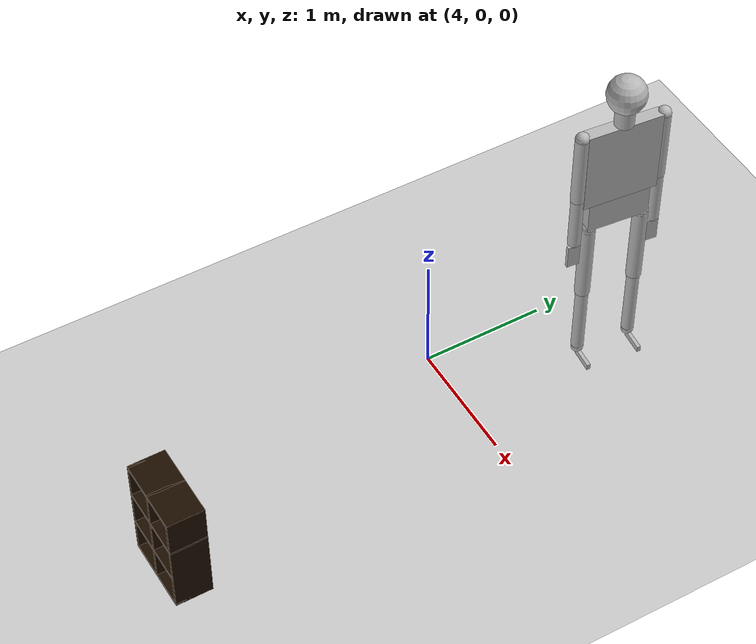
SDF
<sdf version="1.7">
 <world name="default">
  <model name="ground_plane">
   <static>1</static>
   <link name="link">
    <collision name="collision">
     <geometry><plane><normal>0 0 1</normal><size>100 100</size></plane></geometry>
     <surface>
      <contact><collide_bitmask>65535</collide_bitmask></contact>
      <friction><ode><mu>100</mu><mu2>50</mu2></ode></friction>
     </surface>
    </collision>
    <visual name="visual">
     <cast_shadows>0</cast_shadows>
     <geometry><plane><normal>0 0 1</normal><size>100 100</size></plane></geometry>
     <material>
      <script><uri>file://media/materials/scripts/gazebo.material</uri><name>Gazebo/Grey</name></script>
     </material>
    </visual>
   </link>
  </model>
  <model name="ragdoll">
   <pose>4.55712 1.25128 1.39978 -8e-05 0.012369 -0.09522</pose>
   <link name="hip">
    <inertial>
     <inertia><ixx>0.1</ixx><ixy>0</ixy><ixz>0</ixz><iyy>0.1</iyy><iyz>0</iyz><izz>0.1</izz></inertia>
     <mass>10</mass>
    </inertial>
    <collision name="hip_geom">
     <pose>0 0 0.125 0 -0 0</pose>
     <geometry><box><size>0.1 0.5 0.25</size></box></geometry>
     <surface>
      <friction><ode><mu>-1</mu><mu2>-1</mu2><fdir1>0 0 0</fdir1><slip1>0</slip1><slip2>0</slip2></ode></friction>
      <bounce><restitution_coefficient>0</restitution_coefficient><threshold>100000</threshold></bounce>
      <contact>
       <ode>
        <soft_cfm>0</soft_cfm>
        <soft_erp>0.2</soft_erp>
        <kp>1e+12</kp>
        <kd>1</kd>
        <max_vel>0</max_vel>
        <min_depth>0.001</min_depth>
       </ode>
      </contact>
     </surface>
    </collision>
    <visual name="hip_geom_visual">
     <pose>0 0 0.125 0 -0 0</pose>
     <geometry><box><size>0.1 0.5 0.25</size></box></geometry>
    </visual>
    <gravity>0</gravity>
   </link>
   <link name="l_thigh_pan">
    <pose>0 0.22 0 0 -0 0</pose>
    <inertial>
     <inertia><ixx>0.01</ixx><ixy>0</ixy><ixz>0</ixz><iyy>0.01</iyy><iyz>0</iyz><izz>0.01</izz></inertia>
     <mass>1</mass>
    </inertial>
    <collision name="l_thigh_pan_geom">
     <pose>0 0 -0.03 0 -0 0</pose>
     <geometry><sphere><radius>0.06</radius></sphere></geometry>
     <surface>
      <friction><ode><mu>-1</mu><mu2>-1</mu2><fdir1>0 0 0</fdir1><slip1>0</slip1><slip2>0</slip2></ode></friction>
      <bounce><restitution_coefficient>0</restitution_coefficient><threshold>100000</threshold></bounce>
      <contact>
       <ode>
        <soft_cfm>0</soft_cfm>
        <soft_erp>0.2</soft_erp>
        <kp>1e+12</kp>
        <kd>1</kd>
        <max_vel>0</max_vel>
        <min_depth>0.001</min_depth>
       </ode>
      </contact>
     </surface>
    </collision>
    <visual name="l_thigh_pan_geom_visual">
     <pose>0 0 -0.03 0 -0 0</pose>
     <geometry><sphere><radius>0.06</radius></sphere></geometry>
    </visual>
    <gravity>0</gravity>
   </link>
   <link name="l_thigh_lift">
    <pose>0 0.22 0 0 -0 0</pose>
    <inertial>
     <inertia><ixx>0.05</ixx><ixy>0</ixy><ixz>0</ixz><iyy>0.05</iyy><iyz>0</iyz><izz>0.05</izz></inertia>
     <mass>5</mass>
    </inertial>
    <collision name="l_thigh_lift_geom">
     <pose>0 0 -0.35 0 -0 0</pose>
     <geometry><cylinder><radius>0.06</radius><length>0.7</length></cylinder></geometry>
     <surface>
      <friction><ode><mu>-1</mu><mu2>-1</mu2><fdir1>0 0 0</fdir1><slip1>0</slip1><slip2>0</slip2></ode></friction>
      <bounce><restitution_coefficient>0</restitution_coefficient><threshold>100000</threshold></bounce>
      <contact>
       <ode>
        <soft_cfm>0</soft_cfm>
        <soft_erp>0.2</soft_erp>
        <kp>1e+12</kp>
        <kd>1</kd>
        <max_vel>0</max_vel>
        <min_depth>0.001</min_depth>
       </ode>
      </contact>
     </surface>
    </collision>
    <visual name="l_thigh_lift_geom_visual">
     <pose>0 0 -0.35 0 -0 0</pose>
     <geometry><cylinder><radius>0.06</radius><length>0.7</length></cylinder></geometry>
    </visual>
    <gravity>0</gravity>
   </link>
   <link name="l_calf">
    <pose>0 0.22 -0.7 0 -0 0</pose>
    <inertial>
     <inertia><ixx>0.02</ixx><ixy>0</ixy><ixz>0</ixz><iyy>0.02</iyy><iyz>0</iyz><izz>0.02</izz></inertia>
     <mass>2</mass>
    </inertial>
    <collision name="l_calf_geom">
     <pose>0 0 -0.3 0 -0 0</pose>
     <geometry><cylinder><radius>0.05</radius><length>0.6</length></cylinder></geometry>
     <surface>
      <friction><ode><mu>-1</mu><mu2>-1</mu2><fdir1>0 0 0</fdir1><slip1>0</slip1><slip2>0</slip2></ode></friction>
      <bounce><restitution_coefficient>0</restitution_coefficient><threshold>100000</threshold></bounce>
      <contact>
       <ode>
        <soft_cfm>0</soft_cfm>
        <soft_erp>0.2</soft_erp>
        <kp>1e+12</kp>
        <kd>1</kd>
        <max_vel>0</max_vel>
        <min_depth>0.001</min_depth>
       </ode>
      </contact>
     </surface>
    </collision>
    <visual name="l_calf_geom_visual">
     <pose>0 0 -0.3 0 -0 0</pose>
     <geometry><cylinder><radius>0.05</radius><length>0.6</length></cylinder></geometry>
    </visual>
    <gravity>0</gravity>
   </link>
   <link name="l_ankle">
    <pose>0 0.22 -1.325 0 -0 0</pose>
    <inertial>
     <inertia><ixx>0.01</ixx><ixy>0</ixy><ixz>0</ixz><iyy>0.01</iyy><iyz>0</iyz><izz>0.01</izz></inertia>
     <mass>1</mass>
    </inertial>
    <collision name="l_ankle_geom">
     <geometry><sphere><radius>0.05</radius></sphere></geometry>
     <surface>
      <friction><ode><mu>-1</mu><mu2>-1</mu2><fdir1>0 0 0</fdir1><slip1>0</slip1><slip2>0</slip2></ode></friction>
      <bounce><restitution_coefficient>0</restitution_coefficient><threshold>100000</threshold></bounce>
      <contact>
       <ode>
        <soft_cfm>0</soft_cfm>
        <soft_erp>0.2</soft_erp>
        <kp>1e+12</kp>
        <kd>1</kd>
        <max_vel>0</max_vel>
        <min_depth>0.001</min_depth>
       </ode>
      </contact>
     </surface>
    </collision>
    <visual name="l_ankle_geom_visual"><geometry><sphere><radius>0.05</radius></sphere></geometry></visual>
    <gravity>0</gravity>
   </link>
   <link name="l_foot">
    <pose>0 0.22 -1.35 0 -0 0</pose>
    <inertial>
     <pose>0.1 0 0 0 -0 0</pose>
     <inertia><ixx>0.01</ixx><ixy>0</ixy><ixz>0</ixz><iyy>0.01</iyy><iyz>0</iyz><izz>0.01</izz></inertia>
     <mass>1</mass>
    </inertial>
    <collision name="l_foot_geom">
     <pose>0.1 0 -0.025 0 -0 0</pose>
     <geometry><box><size>0.2 0.03 0.05</size></box></geometry>
     <surface>
      <friction><ode><mu>-1</mu><mu2>-1</mu2><fdir1>0 0 0</fdir1><slip1>0</slip1><slip2>0</slip2></ode></friction>
      <bounce><restitution_coefficient>0</restitution_coefficient><threshold>100000</threshold></bounce>
      <contact>
       <ode>
        <soft_cfm>0</soft_cfm>
        <soft_erp>0.2</soft_erp>
        <kp>1e+12</kp>
        <kd>1</kd>
        <max_vel>0</max_vel>
        <min_depth>0.001</min_depth>
       </ode>
      </contact>
     </surface>
    </collision>
    <visual name="l_foot_geom_visual">
     <pose>0.1 0 -0.025 0 -0 0</pose>
     <geometry><box><size>0.2 0.03 0.05</size></box></geometry>
    </visual>
   </link>
   <link name="r_thigh_pan">
    <pose>0 -0.22 0 0 -0 0</pose>
    <inertial>
     <inertia><ixx>0.01</ixx><ixy>0</ixy><ixz>0</ixz><iyy>0.01</iyy><iyz>0</iyz><izz>0.01</izz></inertia>
     <mass>1</mass>
    </inertial>
    <collision name="r_thigh_pan_geom">
     <pose>0 0 -0.03 0 -0 0</pose>
     <geometry><sphere><radius>0.06</radius></sphere></geometry>
     <surface>
      <friction><ode><mu>-1</mu><mu2>-1</mu2><fdir1>0 0 0</fdir1><slip1>0</slip1><slip2>0</slip2></ode></friction>
      <bounce><restitution_coefficient>0</restitution_coefficient><threshold>100000</threshold></bounce>
      <contact>
       <ode>
        <soft_cfm>0</soft_cfm>
        <soft_erp>0.2</soft_erp>
        <kp>1e+12</kp>
        <kd>1</kd>
        <max_vel>0</max_vel>
        <min_depth>0.001</min_depth>
       </ode>
      </contact>
     </surface>
    </collision>
    <visual name="r_thigh_pan_geom_visual">
     <pose>0 0 -0.03 0 -0 0</pose>
     <geometry><sphere><radius>0.06</radius></sphere></geometry>
    </visual>
    <gravity>0</gravity>
   </link>
   <link name="r_thigh_lift">
    <pose>0 -0.22 0 0 -0 0</pose>
    <inertial>
     <inertia><ixx>0.05</ixx><ixy>0</ixy><ixz>0</ixz><iyy>0.05</iyy><iyz>0</iyz><izz>0.05</izz></inertia>
     <mass>5</mass>
    </inertial>
    <collision name="r_thigh_lift_geom">
     <pose>0 0 -0.35 0 -0 0</pose>
     <geometry><cylinder><radius>0.06</radius><length>0.7</length></cylinder></geometry>
     <surface>
      <friction><ode><mu>-1</mu><mu2>-1</mu2><fdir1>0 0 0</fdir1><slip1>0</slip1><slip2>0</slip2></ode></friction>
      <bounce><restitution_coefficient>0</restitution_coefficient><threshold>100000</threshold></bounce>
      <contact>
       <ode>
        <soft_cfm>0</soft_cfm>
        <soft_erp>0.2</soft_erp>
        <kp>1e+12</kp>
        <kd>1</kd>
        <max_vel>0</max_vel>
        <min_depth>0.001</min_depth>
       </ode>
      </contact>
     </surface>
    </collision>
    <visual name="r_thigh_lift_geom_visual">
     <pose>0 0 -0.35 0 -0 0</pose>
     <geometry><cylinder><radius>0.06</radius><length>0.7</length></cylinder></geometry>
    </visual>
    <gravity>0</gravity>
   </link>
   <link name="r_calf">
    <pose>0 -0.22 -0.7 0 -0 0</pose>
    <inertial>
     <inertia><ixx>0.02</ixx><ixy>0</ixy><ixz>0</ixz><iyy>0.02</iyy><iyz>0</iyz><izz>0.02</izz></inertia>
     <mass>2</mass>
    </inertial>
    <collision name="r_calf_geom">
     <pose>0 0 -0.3 0 -0 0</pose>
     <geometry><cylinder><radius>0.05</radius><length>0.6</length></cylinder></geometry>
     <surface>
      <friction><ode><mu>-1</mu><mu2>-1</mu2><fdir1>0 0 0</fdir1><slip1>0</slip1><slip2>0</slip2></ode></friction>
      <bounce><restitution_coefficient>0</restitution_coefficient><threshold>100000</threshold></bounce>
      <contact>
       <ode>
        <soft_cfm>0</soft_cfm>
        <soft_erp>0.2</soft_erp>
        <kp>1e+12</kp>
        <kd>1</kd>
        <max_vel>0</max_vel>
        <min_depth>0.001</min_depth>
       </ode>
      </contact>
     </surface>
    </collision>
    <visual name="r_calf_geom_visual">
     <pose>0 0 -0.3 0 -0 0</pose>
     <geometry><cylinder><radius>0.05</radius><length>0.6</length></cylinder></geometry>
    </visual>
    <gravity>0</gravity>
   </link>
   <link name="r_ankle">
    <pose>0 -0.22 -1.325 0 -0 0</pose>
    <inertial>
     <inertia><ixx>0.01</ixx><ixy>0</ixy><ixz>0</ixz><iyy>0.01</iyy><iyz>0</iyz><izz>0.01</izz></inertia>
     <mass>1</mass>
    </inertial>
    <collision name="r_ankle_geom">
     <geometry><sphere><radius>0.05</radius></sphere></geometry>
     <surface>
      <friction><ode><mu>-1</mu><mu2>-1</mu2><fdir1>0 0 0</fdir1><slip1>0</slip1><slip2>0</slip2></ode></friction>
      <bounce><restitution_coefficient>0</restitution_coefficient><threshold>100000</threshold></bounce>
      <contact>
       <ode>
        <soft_cfm>0</soft_cfm>
        <soft_erp>0.2</soft_erp>
        <kp>1e+12</kp>
        <kd>1</kd>
        <max_vel>0</max_vel>
        <min_depth>0.001</min_depth>
       </ode>
      </contact>
     </surface>
    </collision>
    <visual name="r_ankle_geom_visual"><geometry><sphere><radius>0.05</radius></sphere></geometry></visual>
    <gravity>0</gravity>
   </link>
   <link name="r_foot">
    <pose>0 -0.22 -1.35 0 -0 0</pose>
    <inertial>
     <pose>0.1 0 0 0 -0 0</pose>
     <inertia><ixx>0.01</ixx><ixy>0</ixy><ixz>0</ixz><iyy>0.01</iyy><iyz>0</iyz><izz>0.01</izz></inertia>
     <mass>1</mass>
    </inertial>
    <collision name="r_foot_geom">
     <pose>0.1 0 -0.025 0 -0 0</pose>
     <geometry><box><size>0.2 0.03 0.05</size></box></geometry>
     <surface>
      <friction><ode><mu>-1</mu><mu2>-1</mu2><fdir1>0 0 0</fdir1><slip1>0</slip1><slip2>0</slip2></ode></friction>
      <bounce><restitution_coefficient>0</restitution_coefficient><threshold>100000</threshold></bounce>
      <contact>
       <ode>
        <soft_cfm>0</soft_cfm>
        <soft_erp>0.2</soft_erp>
        <kp>1e+12</kp>
        <kd>1</kd>
        <max_vel>0</max_vel>
        <min_depth>0.001</min_depth>
       </ode>
      </contact>
     </surface>
    </collision>
    <visual name="r_foot_geom_visual">
     <pose>0.1 0 -0.025 0 -0 0</pose>
     <geometry><box><size>0.2 0.03 0.05</size></box></geometry>
    </visual>
   </link>
   <link name="torso">
    <pose>0 0 0.25 0 -0 0</pose>
    <inertial>
     <inertia><ixx>0.3</ixx><ixy>0</ixy><ixz>0</ixz><iyy>0.3</iyy><iyz>0</iyz><izz>0.3</izz></inertia>
     <mass>30</mass>
    </inertial>
    <collision name="torso_geom">
     <pose>0 0 0.35 0 -0 0</pose>
     <geometry><box><size>0.1 0.6 0.7</size></box></geometry>
     <surface>
      <friction><ode><mu>-1</mu><mu2>-1</mu2><fdir1>0 0 0</fdir1><slip1>0</slip1><slip2>0</slip2></ode></friction>
      <bounce><restitution_coefficient>0</restitution_coefficient><threshold>100000</threshold></bounce>
      <contact>
       <ode>
        <soft_cfm>0</soft_cfm>
        <soft_erp>0.2</soft_erp>
        <kp>1e+12</kp>
        <kd>1</kd>
        <max_vel>0</max_vel>
        <min_depth>0.001</min_depth>
       </ode>
      </contact>
     </surface>
    </collision>
    <visual name="torso_geom_visual">
     <pose>0 0 0.35 0 -0 0</pose>
     <geometry><box><size>0.1 0.6 0.7</size></box></geometry>
    </visual>
    <gravity>0</gravity>
   </link>
   <link name="l_shoulder">
    <pose>0 0.3275 0.9225 0 -0 0</pose>
    <inertial>
     <inertia><ixx>0.01</ixx><ixy>0</ixy><ixz>0</ixz><iyy>0.01</iyy><iyz>0</iyz><izz>0.01</izz></inertia>
     <mass>1</mass>
    </inertial>
    <collision name="l_shoulder_geom">
     <geometry><sphere><radius>0.055</radius></sphere></geometry>
     <surface>
      <friction><ode><mu>-1</mu><mu2>-1</mu2><fdir1>0 0 0</fdir1><slip1>0</slip1><slip2>0</slip2></ode></friction>
      <bounce><restitution_coefficient>0</restitution_coefficient><threshold>100000</threshold></bounce>
      <contact>
       <ode>
        <soft_cfm>0</soft_cfm>
        <soft_erp>0.2</soft_erp>
        <kp>1e+12</kp>
        <kd>1</kd>
        <max_vel>0</max_vel>
        <min_depth>0.001</min_depth>
       </ode>
      </contact>
     </surface>
    </collision>
    <visual name="l_shoulder_geom_visual"><geometry><sphere><radius>0.055</radius></sphere></geometry></visual>
    <gravity>0</gravity>
   </link>
   <link name="l_upper_arm">
    <pose>0 0.3275 0.9225 0 -0 0</pose>
    <inertial>
     <inertia><ixx>0.02</ixx><ixy>0</ixy><ixz>0</ixz><iyy>0.02</iyy><iyz>0</iyz><izz>0.02</izz></inertia>
     <mass>2</mass>
    </inertial>
    <collision name="l_upper_arm_geom">
     <pose>0 0 -0.3 0 -0 0</pose>
     <geometry><cylinder><radius>0.055</radius><length>0.6</length></cylinder></geometry>
     <surface>
      <friction><ode><mu>-1</mu><mu2>-1</mu2><fdir1>0 0 0</fdir1><slip1>0</slip1><slip2>0</slip2></ode></friction>
      <bounce><restitution_coefficient>0</restitution_coefficient><threshold>100000</threshold></bounce>
      <contact>
       <ode>
        <soft_cfm>0</soft_cfm>
        <soft_erp>0.2</soft_erp>
        <kp>1e+12</kp>
        <kd>1</kd>
        <max_vel>0</max_vel>
        <min_depth>0.001</min_depth>
       </ode>
      </contact>
     </surface>
    </collision>
    <visual name="l_upper_arm_geom_visual">
     <pose>0 0 -0.3 0 -0 0</pose>
     <geometry><cylinder><radius>0.055</radius><length>0.6</length></cylinder></geometry>
    </visual>
    <gravity>0</gravity>
   </link>
   <link name="l_forearm">
    <pose>0 0.3275 0.3225 0 -0 0</pose>
    <inertial>
     <inertia><ixx>0.01</ixx><ixy>0</ixy><ixz>0</ixz><iyy>0.01</iyy><iyz>0</iyz><izz>0.01</izz></inertia>
     <mass>1</mass>
    </inertial>
    <collision name="l_forearm_geom">
     <pose>0 0 -0.225 0 -0 0</pose>
     <geometry><cylinder><radius>0.05</radius><length>0.45</length></cylinder></geometry>
     <surface>
      <friction><ode><mu>-1</mu><mu2>-1</mu2><fdir1>0 0 0</fdir1><slip1>0</slip1><slip2>0</slip2></ode></friction>
      <bounce><restitution_coefficient>0</restitution_coefficient><threshold>100000</threshold></bounce>
      <contact>
       <ode>
        <soft_cfm>0</soft_cfm>
        <soft_erp>0.2</soft_erp>
        <kp>1e+12</kp>
        <kd>1</kd>
        <max_vel>0</max_vel>
        <min_depth>0.001</min_depth>
       </ode>
      </contact>
     </surface>
    </collision>
    <visual name="l_forearm_geom_visual">
     <pose>0 0 -0.225 0 -0 0</pose>
     <geometry><cylinder><radius>0.05</radius><length>0.45</length></cylinder></geometry>
    </visual>
    <gravity>0</gravity>
   </link>
   <link name="l_wrist">
    <pose>0 0.3275 -0.1425 0 -0 0</pose>
    <inertial>
     <inertia><ixx>0.01</ixx><ixy>0</ixy><ixz>0</ixz><iyy>0.01</iyy><iyz>0</iyz><izz>0.01</izz></inertia>
     <mass>1</mass>
    </inertial>
    <collision name="l_wrist_geom">
     <geometry><sphere><radius>0.03</radius></sphere></geometry>
     <surface>
      <friction><ode><mu>-1</mu><mu2>-1</mu2><fdir1>0 0 0</fdir1><slip1>0</slip1><slip2>0</slip2></ode></friction>
      <bounce><restitution_coefficient>0</restitution_coefficient><threshold>100000</threshold></bounce>
      <contact>
       <ode>
        <soft_cfm>0</soft_cfm>
        <soft_erp>0.2</soft_erp>
        <kp>1e+12</kp>
        <kd>1</kd>
        <max_vel>0</max_vel>
        <min_depth>0.001</min_depth>
       </ode>
      </contact>
     </surface>
    </collision>
    <visual name="l_wrist_geom_visual"><geometry><sphere><radius>0.03</radius></sphere></geometry></visual>
    <gravity>0</gravity>
   </link>
   <link name="l_hand">
    <pose>0 0.3275 -0.1575 0 -0 0</pose>
    <inertial>
     <inertia><ixx>0.01</ixx><ixy>0</ixy><ixz>0</ixz><iyy>0.01</iyy><iyz>0</iyz><izz>0.01</izz></inertia>
     <mass>1</mass>
    </inertial>
    <collision name="l_hand_geom">
     <pose>0 0 -0.1 0 -0 0</pose>
     <geometry><box><size>0.03 0.1 0.2</size></box></geometry>
     <surface>
      <friction><ode><mu>-1</mu><mu2>-1</mu2><fdir1>0 0 0</fdir1><slip1>0</slip1><slip2>0</slip2></ode></friction>
      <bounce><restitution_coefficient>0</restitution_coefficient><threshold>100000</threshold></bounce>
      <contact>
       <ode>
        <soft_cfm>0</soft_cfm>
        <soft_erp>0.2</soft_erp>
        <kp>1e+12</kp>
        <kd>1</kd>
        <max_vel>0</max_vel>
        <min_depth>0.001</min_depth>
       </ode>
      </contact>
     </surface>
    </collision>
    <visual name="l_hand_geom_visual">
     <pose>0 0 -0.1 0 -0 0</pose>
     <geometry><box><size>0.03 0.1 0.2</size></box></geometry>
    </visual>
    <gravity>0</gravity>
   </link>
   <link name="neck">
    <pose>0 0 0.95 0 -0 0</pose>
    <inertial>
     <inertia><ixx>0.01</ixx><ixy>0</ixy><ixz>0</ixz><iyy>0.01</iyy><iyz>0</iyz><izz>0.01</izz></inertia>
     <mass>1</mass>
    </inertial>
    <collision name="neck_geom">
     <pose>0 0 0.1 0 -0 0</pose>
     <geometry><cylinder><radius>0.075</radius><length>0.2</length></cylinder></geometry>
     <surface>
      <friction><ode><mu>-1</mu><mu2>-1</mu2><fdir1>0 0 0</fdir1><slip1>0</slip1><slip2>0</slip2></ode></friction>
      <bounce><restitution_coefficient>0</restitution_coefficient><threshold>100000</threshold></bounce>
      <contact>
       <ode>
        <soft_cfm>0</soft_cfm>
        <soft_erp>0.2</soft_erp>
        <kp>1e+12</kp>
        <kd>1</kd>
        <max_vel>0</max_vel>
        <min_depth>0.001</min_depth>
       </ode>
      </contact>
     </surface>
    </collision>
    <visual name="neck_geom_visual">
     <pose>0 0 0.1 0 -0 0</pose>
     <geometry><cylinder><radius>0.075</radius><length>0.2</length></cylinder></geometry>
    </visual>
    <gravity>0</gravity>
   </link>
   <link name="head">
    <pose>0 0 1.225 0 -0 0</pose>
    <inertial>
     <inertia><ixx>0.1</ixx><ixy>0</ixy><ixz>0</ixz><iyy>0.1</iyy><iyz>0</iyz><izz>0.1</izz></inertia>
     <mass>10</mass>
    </inertial>
    <collision name="head_geom">
     <geometry><sphere><radius>0.15</radius></sphere></geometry>
     <surface>
      <friction><ode><mu>-1</mu><mu2>-1</mu2><fdir1>0 0 0</fdir1><slip1>0</slip1><slip2>0</slip2></ode></friction>
      <bounce><restitution_coefficient>0</restitution_coefficient><threshold>100000</threshold></bounce>
      <contact>
       <ode>
        <soft_cfm>0</soft_cfm>
        <soft_erp>0.2</soft_erp>
        <kp>1e+12</kp>
        <kd>1</kd>
        <max_vel>0</max_vel>
        <min_depth>0.001</min_depth>
       </ode>
      </contact>
     </surface>
    </collision>
    <visual name="head_geom_visual"><geometry><sphere><radius>0.15</radius></sphere></geometry></visual>
    <gravity>0</gravity>
   </link>
   <link name="r_shoulder">
    <pose>0 -0.3275 0.9225 0 -0 0</pose>
    <inertial>
     <inertia><ixx>0.01</ixx><ixy>0</ixy><ixz>0</ixz><iyy>0.01</iyy><iyz>0</iyz><izz>0.01</izz></inertia>
     <mass>1</mass>
    </inertial>
    <collision name="r_shoulder_geom">
     <geometry><sphere><radius>0.055</radius></sphere></geometry>
     <surface>
      <friction><ode><mu>-1</mu><mu2>-1</mu2><fdir1>0 0 0</fdir1><slip1>0</slip1><slip2>0</slip2></ode></friction>
      <bounce><restitution_coefficient>0</restitution_coefficient><threshold>100000</threshold></bounce>
      <contact>
       <ode>
        <soft_cfm>0</soft_cfm>
        <soft_erp>0.2</soft_erp>
        <kp>1e+12</kp>
        <kd>1</kd>
        <max_vel>0</max_vel>
        <min_depth>0.001</min_depth>
       </ode>
      </contact>
     </surface>
    </collision>
    <visual name="r_shoulder_geom_visual"><geometry><sphere><radius>0.055</radius></sphere></geometry></visual>
    <gravity>0</gravity>
   </link>
   <link name="r_upper_arm">
    <pose>0 -0.3275 0.9225 0 -0 0</pose>
    <inertial>
     <inertia><ixx>0.02</ixx><ixy>0</ixy><ixz>0</ixz><iyy>0.02</iyy><iyz>0</iyz><izz>0.02</izz></inertia>
     <mass>2</mass>
    </inertial>
    <collision name="r_upper_arm_geom">
     <pose>0 0 -0.3 0 -0 0</pose>
     <geometry><cylinder><radius>0.055</radius><length>0.6</length></cylinder></geometry>
     <surface>
      <friction><ode><mu>-1</mu><mu2>-1</mu2><fdir1>0 0 0</fdir1><slip1>0</slip1><slip2>0</slip2></ode></friction>
      <bounce><restitution_coefficient>0</restitution_coefficient><threshold>100000</threshold></bounce>
      <contact>
       <ode>
        <soft_cfm>0</soft_cfm>
        <soft_erp>0.2</soft_erp>
        <kp>1e+12</kp>
        <kd>1</kd>
        <max_vel>0</max_vel>
        <min_depth>0.001</min_depth>
       </ode>
      </contact>
     </surface>
    </collision>
    <visual name="r_upper_arm_geom_visual">
     <pose>0 0 -0.3 0 -0 0</pose>
     <geometry><cylinder><radius>0.055</radius><length>0.6</length></cylinder></geometry>
    </visual>
    <gravity>0</gravity>
   </link>
   <link name="r_forearm">
    <pose>0 -0.3275 0.3225 0 -0 0</pose>
    <inertial>
     <inertia><ixx>0.01</ixx><ixy>0</ixy><ixz>0</ixz><iyy>0.01</iyy><iyz>0</iyz><izz>0.01</izz></inertia>
     <mass>1</mass>
    </inertial>
    <collision name="r_forearm_geom">
     <pose>0 0 -0.225 0 -0 0</pose>
     <geometry><cylinder><radius>0.05</radius><length>0.45</length></cylinder></geometry>
     <surface>
      <friction><ode><mu>-1</mu><mu2>-1</mu2><fdir1>0 0 0</fdir1><slip1>0</slip1><slip2>0</slip2></ode></friction>
      <bounce><restitution_coefficient>0</restitution_coefficient><threshold>100000</threshold></bounce>
      <contact>
       <ode>
        <soft_cfm>0</soft_cfm>
        <soft_erp>0.2</soft_erp>
        <kp>1e+12</kp>
        <kd>1</kd>
        <max_vel>0</max_vel>
        <min_depth>0.001</min_depth>
       </ode>
      </contact>
     </surface>
    </collision>
    <visual name="r_forearm_geom_visual">
     <pose>0 0 -0.225 0 -0 0</pose>
     <geometry><cylinder><radius>0.05</radius><length>0.45</length></cylinder></geometry>
    </visual>
    <gravity>0</gravity>
   </link>
   <link name="r_wrist">
    <pose>0 -0.3275 -0.1425 0 -0 0</pose>
    <inertial>
     <inertia><ixx>0.01</ixx><ixy>0</ixy><ixz>0</ixz><iyy>0.01</iyy><iyz>0</iyz><izz>0.01</izz></inertia>
     <mass>1</mass>
    </inertial>
    <collision name="r_wrist_geom">
     <geometry><sphere><radius>0.03</radius></sphere></geometry>
     <surface>
      <friction><ode><mu>-1</mu><mu2>-1</mu2><fdir1>0 0 0</fdir1><slip1>0</slip1><slip2>0</slip2></ode></friction>
      <bounce><restitution_coefficient>0</restitution_coefficient><threshold>100000</threshold></bounce>
      <contact>
       <ode>
        <soft_cfm>0</soft_cfm>
        <soft_erp>0.2</soft_erp>
        <kp>1e+12</kp>
        <kd>1</kd>
        <max_vel>0</max_vel>
        <min_depth>0.001</min_depth>
       </ode>
      </contact>
     </surface>
    </collision>
    <visual name="r_wrist_geom_visual"><geometry><sphere><radius>0.03</radius></sphere></geometry></visual>
    <gravity>0</gravity>
   </link>
   <link name="r_hand">
    <pose>0 -0.3275 -0.1575 0 -0 0</pose>
    <inertial>
     <inertia><ixx>0.01</ixx><ixy>0</ixy><ixz>0</ixz><iyy>0.01</iyy><iyz>0</iyz><izz>0.01</izz></inertia>
     <mass>1</mass>
    </inertial>
    <collision name="r_hand_geom">
     <pose>0 0 -0.1 0 -0 0</pose>
     <geometry><box><size>0.03 0.1 0.2</size></box></geometry>
     <surface>
      <friction><ode><mu>-1</mu><mu2>-1</mu2><fdir1>0 0 0</fdir1><slip1>0</slip1><slip2>0</slip2></ode></friction>
      <bounce><restitution_coefficient>0</restitution_coefficient><threshold>100000</threshold></bounce>
      <contact>
       <ode>
        <soft_cfm>0</soft_cfm>
        <soft_erp>0.2</soft_erp>
        <kp>1e+12</kp>
        <kd>1</kd>
        <max_vel>0</max_vel>
        <min_depth>0.001</min_depth>
       </ode>
      </contact>
     </surface>
    </collision>
    <visual name="r_hand_geom_visual">
     <pose>0 0 -0.1 0 -0 0</pose>
     <geometry><box><size>0.03 0.1 0.2</size></box></geometry>
    </visual>
    <gravity>0</gravity>
   </link>
   <joint name="l_thigh_pan_joint" type="revolute">
    <parent>hip</parent>
    <child>l_thigh_pan</child>
    <axis>
     <dynamics>
      <damping>0</damping>
      <friction>0</friction>
      <spring_reference>0</spring_reference>
      <spring_stiffness>0</spring_stiffness>
     </dynamics>
     <limit><lower>-1.5708</lower><upper>1.5708</upper><effort>0</effort><velocity>0</velocity></limit>
     <xyz expressed_in="__model__">0 0 1</xyz>
    </axis>
   </joint>
   <joint name="l_thigh_lift_joint" type="revolute">
    <parent>l_thigh_pan</parent>
    <child>l_thigh_lift</child>
    <axis>
     <dynamics>
      <damping>0</damping>
      <friction>0</friction>
      <spring_reference>0</spring_reference>
      <spring_stiffness>0</spring_stiffness>
     </dynamics>
     <limit><lower>-1.5708</lower><upper>1.5708</upper><effort>0</effort><velocity>0</velocity></limit>
     <xyz expressed_in="__model__">0 1 0</xyz>
    </axis>
   </joint>
   <joint name="l_calf_joint" type="revolute">
    <parent>l_thigh_lift</parent>
    <child>l_calf</child>
    <axis>
     <dynamics>
      <damping>0</damping>
      <friction>0</friction>
      <spring_reference>0</spring_reference>
      <spring_stiffness>0</spring_stiffness>
     </dynamics>
     <limit><lower>-1.5708</lower><upper>1.5708</upper><effort>0</effort><velocity>0</velocity></limit>
     <xyz expressed_in="__model__">0 1 0</xyz>
    </axis>
   </joint>
   <joint name="l_ankle_joint" type="revolute">
    <parent>l_calf</parent>
    <child>l_ankle</child>
    <axis>
     <dynamics>
      <damping>0</damping>
      <friction>0</friction>
      <spring_reference>0</spring_reference>
      <spring_stiffness>0</spring_stiffness>
     </dynamics>
     <limit><lower>-1.5708</lower><upper>1.5708</upper><effort>0</effort><velocity>0</velocity></limit>
     <xyz expressed_in="__model__">0 1 0</xyz>
    </axis>
   </joint>
   <joint name="l_foot_joint" type="revolute">
    <parent>l_ankle</parent>
    <child>l_foot</child>
    <axis>
     <dynamics>
      <damping>0</damping>
      <friction>0</friction>
      <spring_reference>0</spring_reference>
      <spring_stiffness>0</spring_stiffness>
     </dynamics>
     <limit><lower>-1.5708</lower><upper>1.5708</upper><effort>0</effort><velocity>0</velocity></limit>
     <xyz expressed_in="__model__">1 0 0</xyz>
    </axis>
   </joint>
   <joint name="r_thigh_pan_joint" type="revolute">
    <parent>hip</parent>
    <child>r_thigh_pan</child>
    <axis>
     <dynamics>
      <damping>0</damping>
      <friction>0</friction>
      <spring_reference>0</spring_reference>
      <spring_stiffness>0</spring_stiffness>
     </dynamics>
     <limit><lower>-1.5708</lower><upper>1.5708</upper><effort>0</effort><velocity>0</velocity></limit>
     <xyz expressed_in="__model__">0 0 1</xyz>
    </axis>
   </joint>
   <joint name="r_thigh_lift_joint" type="revolute">
    <parent>r_thigh_pan</parent>
    <child>r_thigh_lift</child>
    <axis>
     <dynamics>
      <damping>0</damping>
      <friction>0</friction>
      <spring_reference>0</spring_reference>
      <spring_stiffness>0</spring_stiffness>
     </dynamics>
     <limit><lower>-1.5708</lower><upper>1.5708</upper><effort>0</effort><velocity>0</velocity></limit>
     <xyz expressed_in="__model__">0 1 0</xyz>
    </axis>
   </joint>
   <joint name="r_calf_joint" type="revolute">
    <parent>r_thigh_lift</parent>
    <child>r_calf</child>
    <axis>
     <dynamics>
      <damping>0</damping>
      <friction>0</friction>
      <spring_reference>0</spring_reference>
      <spring_stiffness>0</spring_stiffness>
     </dynamics>
     <limit><lower>-1.5708</lower><upper>1.5708</upper><effort>0</effort><velocity>0</velocity></limit>
     <xyz expressed_in="__model__">0 1 0</xyz>
    </axis>
   </joint>
   <joint name="r_ankle_joint" type="revolute">
    <parent>r_calf</parent>
    <child>r_ankle</child>
    <axis>
     <dynamics>
      <damping>0</damping>
      <friction>0</friction>
      <spring_reference>0</spring_reference>
      <spring_stiffness>0</spring_stiffness>
     </dynamics>
     <limit><lower>-1.5708</lower><upper>1.5708</upper><effort>0</effort><velocity>0</velocity></limit>
     <xyz expressed_in="__model__">0 1 0</xyz>
    </axis>
   </joint>
   <joint name="r_foot_joint" type="revolute">
    <parent>r_ankle</parent>
    <child>r_foot</child>
    <axis>
     <dynamics>
      <damping>0</damping>
      <friction>0</friction>
      <spring_reference>0</spring_reference>
      <spring_stiffness>0</spring_stiffness>
     </dynamics>
     <limit><lower>-1.5708</lower><upper>1.5708</upper><effort>0</effort><velocity>0</velocity></limit>
     <xyz expressed_in="__model__">1 0 0</xyz>
    </axis>
   </joint>
   <joint name="torso_joint" type="revolute">
    <parent>hip</parent>
    <child>torso</child>
    <axis>
     <dynamics>
      <damping>0</damping>
      <friction>0</friction>
      <spring_reference>0</spring_reference>
      <spring_stiffness>0</spring_stiffness>
     </dynamics>
     <limit><lower>-1.5708</lower><upper>1.5708</upper><effort>0</effort><velocity>0</velocity></limit>
     <xyz expressed_in="__model__">0 1 0</xyz>
    </axis>
   </joint>
   <joint name="l_shoulder_joint" type="revolute">
    <parent>torso</parent>
    <child>l_shoulder</child>
    <axis>
     <dynamics>
      <damping>0</damping>
      <friction>0</friction>
      <spring_reference>0</spring_reference>
      <spring_stiffness>0</spring_stiffness>
     </dynamics>
     <limit><lower>-1.5708</lower><upper>1.5708</upper><effort>0</effort><velocity>0</velocity></limit>
     <xyz expressed_in="__model__">1 0 0</xyz>
    </axis>
   </joint>
   <joint name="l_upper_arm_joint" type="revolute">
    <parent>l_shoulder</parent>
    <child>l_upper_arm</child>
    <axis>
     <dynamics>
      <damping>0</damping>
      <friction>0</friction>
      <spring_reference>0</spring_reference>
      <spring_stiffness>0</spring_stiffness>
     </dynamics>
     <limit><lower>-1.5708</lower><upper>1.5708</upper><effort>0</effort><velocity>0</velocity></limit>
     <xyz expressed_in="__model__">0 1 0</xyz>
    </axis>
   </joint>
   <joint name="l_forearm_joint" type="revolute">
    <parent>l_upper_arm</parent>
    <child>l_forearm</child>
    <axis>
     <dynamics>
      <damping>0</damping>
      <friction>0</friction>
      <spring_reference>0</spring_reference>
      <spring_stiffness>0</spring_stiffness>
     </dynamics>
     <limit><lower>-1.5708</lower><upper>1.5708</upper><effort>0</effort><velocity>0</velocity></limit>
     <xyz expressed_in="__model__">0 1 0</xyz>
    </axis>
   </joint>
   <joint name="l_wrist_joint" type="revolute">
    <parent>l_forearm</parent>
    <child>l_wrist</child>
    <axis>
     <dynamics>
      <damping>0</damping>
      <friction>0</friction>
      <spring_reference>0</spring_reference>
      <spring_stiffness>0</spring_stiffness>
     </dynamics>
     <limit><lower>-1.5708</lower><upper>1.5708</upper><effort>0</effort><velocity>0</velocity></limit>
     <xyz expressed_in="__model__">0 1 0</xyz>
    </axis>
   </joint>
   <joint name="l_hand_joint" type="revolute">
    <parent>l_wrist</parent>
    <child>l_hand</child>
    <axis>
     <dynamics>
      <damping>0</damping>
      <friction>0</friction>
      <spring_reference>0</spring_reference>
      <spring_stiffness>0</spring_stiffness>
     </dynamics>
     <limit><lower>-1.5708</lower><upper>1.5708</upper><effort>0</effort><velocity>0</velocity></limit>
     <xyz expressed_in="__model__">0 1 0</xyz>
    </axis>
   </joint>
   <joint name="neck_joint" type="revolute">
    <parent>torso</parent>
    <child>neck</child>
    <axis>
     <dynamics>
      <damping>0</damping>
      <friction>0</friction>
      <spring_reference>0</spring_reference>
      <spring_stiffness>0</spring_stiffness>
     </dynamics>
     <limit><lower>-1.5708</lower><upper>1.5708</upper><effort>0</effort><velocity>0</velocity></limit>
     <xyz expressed_in="__model__">0 0 1</xyz>
    </axis>
   </joint>
   <joint name="head_joint" type="revolute">
    <parent>neck</parent>
    <child>head</child>
    <axis>
     <dynamics>
      <damping>0</damping>
      <friction>0</friction>
      <spring_reference>0</spring_reference>
      <spring_stiffness>0</spring_stiffness>
     </dynamics>
     <limit><lower>-1.5708</lower><upper>1.5708</upper><effort>0</effort><velocity>0</velocity></limit>
     <xyz expressed_in="__model__">0 1 0</xyz>
    </axis>
   </joint>
   <joint name="r_shoulder_joint" type="revolute">
    <parent>torso</parent>
    <child>r_shoulder</child>
    <axis>
     <dynamics>
      <damping>0</damping>
      <friction>0</friction>
      <spring_reference>0</spring_reference>
      <spring_stiffness>0</spring_stiffness>
     </dynamics>
     <limit><lower>-1.5708</lower><upper>1.5708</upper><effort>0</effort><velocity>0</velocity></limit>
     <xyz expressed_in="__model__">1 0 0</xyz>
    </axis>
   </joint>
   <joint name="r_upper_arm_joint" type="revolute">
    <parent>r_shoulder</parent>
    <child>r_upper_arm</child>
    <axis>
     <dynamics>
      <damping>0</damping>
      <friction>0</friction>
      <spring_reference>0</spring_reference>
      <spring_stiffness>0</spring_stiffness>
     </dynamics>
     <limit><lower>-1.5708</lower><upper>1.5708</upper><effort>0</effort><velocity>0</velocity></limit>
     <xyz expressed_in="__model__">0 1 0</xyz>
    </axis>
   </joint>
   <joint name="r_forearm_joint" type="revolute">
    <parent>r_upper_arm</parent>
    <child>r_forearm</child>
    <axis>
     <dynamics>
      <damping>0</damping>
      <friction>0</friction>
      <spring_reference>0</spring_reference>
      <spring_stiffness>0</spring_stiffness>
     </dynamics>
     <limit><lower>-1.5708</lower><upper>1.5708</upper><effort>0</effort><velocity>0</velocity></limit>
     <xyz expressed_in="__model__">0 1 0</xyz>
    </axis>
   </joint>
   <joint name="r_wrist_joint" type="revolute">
    <parent>r_forearm</parent>
    <child>r_wrist</child>
    <axis>
     <dynamics>
      <damping>0</damping>
      <friction>0</friction>
      <spring_reference>0</spring_reference>
      <spring_stiffness>0</spring_stiffness>
     </dynamics>
     <limit><lower>-1.5708</lower><upper>1.5708</upper><effort>0</effort><velocity>0</velocity></limit>
     <xyz expressed_in="__model__">0 1 0</xyz>
    </axis>
   </joint>
   <joint name="r_hand_joint" type="revolute">
    <parent>r_wrist</parent>
    <child>r_hand</child>
    <axis>
     <dynamics>
      <damping>0</damping>
      <friction>0</friction>
      <spring_reference>0</spring_reference>
      <spring_stiffness>0</spring_stiffness>
     </dynamics>
     <limit><lower>-1.5708</lower><upper>1.5708</upper><effort>0</effort><velocity>0</velocity></limit>
     <xyz expressed_in="__model__">0 1 0</xyz>
    </axis>
   </joint>
   <static>0</static>
  </model>
  <model name="6_Cube_StorageE">
   <link name="Wall_0">
    <pose>0 0 0.01 0 -0 0</pose>
    <inertial>
     <mass>1.6201</mass>
     <inertia><ixx>0.0119</ixx><iyy>0.0631</iyy><izz>0.0513</izz><ixy>0</ixy><ixz>0</ixz><iyz>0</iyz></inertia>
    </inertial>
    <collision name="Wall_0_Collision"><geometry><box><size>0.616 0.296 0.02</size></box></geometry></collision>
    <visual name="Wall_0_Visual">
     <geometry><box><size>0.616 0.296 0.02</size></box></geometry>
     <material>
      <script><uri>file://media/materials/scripts/gazebo.material</uri><name>Gazebo/Grey</name></script>
      <ambient>0.105882 0.0509804 0 1</ambient>
     </material>
    </visual>
   </link>
   <joint name="0_2" type="fixed">
    <pose>-0.308 0 0 0 -0 0</pose>
    <parent>Wall_2</parent>
    <child>Wall_0</child>
    <axis><xyz>1 0 0</xyz><limit><lower>-1e+16</lower><upper>1e+16</upper></limit></axis>
   </joint>
   <joint name="0_12" type="fixed">
    <parent>Wall_12</parent>
    <child>Wall_0</child>
    <axis><xyz>0 0 1</xyz><limit><lower>-1e+16</lower><upper>1e+16</upper></limit></axis>
   </joint>
   <joint name="0_4" type="fixed">
    <pose>0.308 0 0 0 -0 0</pose>
    <parent>Wall_4</parent>
    <child>Wall_0</child>
    <axis><xyz>1 0 0</xyz><limit><lower>-1e+16</lower><upper>1e+16</upper></limit></axis>
   </joint>
   <link name="Wall_10">
    <pose>0 0 0.61 0 -0 0</pose>
    <inertial>
     <mass>1.6201</mass>
     <inertia><ixx>0.0119</ixx><iyy>0.0631</iyy><izz>0.0513</izz><ixy>0</ixy><ixz>0</ixz><iyz>0</iyz></inertia>
    </inertial>
    <collision name="Wall_10_Collision"><geometry><box><size>0.616 0.296 0.02</size></box></geometry></collision>
    <visual name="Wall_10_Visual">
     <geometry><box><size>0.616 0.296 0.02</size></box></geometry>
     <material>
      <script><uri>file://media/materials/scripts/gazebo.material</uri><name>Gazebo/Grey</name></script>
      <ambient>0.105882 0.0509804 0 1</ambient>
     </material>
    </visual>
   </link>
   <joint name="10_2" type="fixed">
    <pose>-0.308 0 0 0 -0 0</pose>
    <parent>Wall_2</parent>
    <child>Wall_10</child>
    <axis><xyz>1 0 0</xyz><limit><lower>-1e+16</lower><upper>1e+16</upper></limit></axis>
   </joint>
   <joint name="10_12" type="fixed">
    <parent>Wall_12</parent>
    <child>Wall_10</child>
    <axis><xyz>0 0 1</xyz><limit><lower>-1e+16</lower><upper>1e+16</upper></limit></axis>
   </joint>
   <joint name="10_4" type="fixed">
    <pose>0.308 0 0 0 -0 0</pose>
    <parent>Wall_4</parent>
    <child>Wall_10</child>
    <axis><xyz>1 0 0</xyz><limit><lower>-1e+16</lower><upper>1e+16</upper></limit></axis>
   </joint>
   <link name="Wall_12">
    <pose>0 0 0.4575 0 -0 0</pose>
    <inertial>
     <mass>2.4065</mass>
     <inertia><ixx>0.0177</ixx><iyy>0.1855</iyy><izz>0.168</izz><ixy>0</ixy><ixz>0</ixz><iyz>0</iyz></inertia>
    </inertial>
    <collision name="Wall_12_Collision"><geometry><box><size>0.02 0.296 0.915</size></box></geometry></collision>
    <visual name="Wall_12_Visual">
     <geometry><box><size>0.02 0.296 0.915</size></box></geometry>
     <material>
      <script><uri>file://media/materials/scripts/gazebo.material</uri><name>Gazebo/Grey</name></script>
      <ambient>0.105882 0.0509804 0 1</ambient>
     </material>
    </visual>
   </link>
   <link name="Wall_2">
    <pose>-0.298 0 0.4575 0 -0 0</pose>
    <inertial>
     <mass>2.4065</mass>
     <inertia><ixx>0.0177</ixx><iyy>0.1855</iyy><izz>0.168</izz><ixy>0</ixy><ixz>0</ixz><iyz>0</iyz></inertia>
    </inertial>
    <collision name="Wall_2_Collision"><geometry><box><size>0.02 0.296 0.915</size></box></geometry></collision>
    <visual name="Wall_2_Visual">
     <geometry><box><size>0.02 0.296 0.915</size></box></geometry>
     <material>
      <script><uri>file://media/materials/scripts/gazebo.material</uri><name>Gazebo/Grey</name></script>
      <ambient>0.105882 0.0509804 0 1</ambient>
     </material>
    </visual>
   </link>
   <link name="Wall_4">
    <pose>0.298 0 0.4575 0 -0 0</pose>
    <inertial>
     <mass>2.4065</mass>
     <inertia><ixx>0.0177</ixx><iyy>0.1855</iyy><izz>0.168</izz><ixy>0</ixy><ixz>0</ixz><iyz>0</iyz></inertia>
    </inertial>
    <collision name="Wall_4_Collision"><geometry><box><size>0.02 0.296 0.915</size></box></geometry></collision>
    <visual name="Wall_4_Visual">
     <geometry><box><size>0.02 0.296 0.915</size></box></geometry>
     <material>
      <script><uri>file://media/materials/scripts/gazebo.material</uri><name>Gazebo/Grey</name></script>
      <ambient>0.105882 0.0509804 0 1</ambient>
     </material>
    </visual>
   </link>
   <link name="Wall_6">
    <pose>0 0 0.905 0 -0 0</pose>
    <inertial>
     <mass>1.6201</mass>
     <inertia><ixx>0.0119</ixx><iyy>0.0631</iyy><izz>0.0513</izz><ixy>0</ixy><ixz>0</ixz><iyz>0</iyz></inertia>
    </inertial>
    <collision name="Wall_6_Collision"><geometry><box><size>0.616 0.296 0.02</size></box></geometry></collision>
    <visual name="Wall_6_Visual">
     <geometry><box><size>0.616 0.296 0.02</size></box></geometry>
     <material>
      <script><uri>file://media/materials/scripts/gazebo.material</uri><name>Gazebo/Grey</name></script>
      <ambient>0.105882 0.0509804 0 1</ambient>
     </material>
    </visual>
   </link>
   <joint name="6_2" type="fixed">
    <pose>-0.308 0 0 0 -0 0</pose>
    <parent>Wall_2</parent>
    <child>Wall_6</child>
    <axis><xyz>2 0 0</xyz><limit><lower>-1e+16</lower><upper>1e+16</upper></limit></axis>
   </joint>
   <joint name="6_12" type="fixed">
    <parent>Wall_12</parent>
    <child>Wall_6</child>
    <axis><xyz>0 0 1</xyz><limit><lower>-1e+16</lower><upper>1e+16</upper></limit></axis>
   </joint>
   <joint name="6_4" type="fixed">
    <pose>0.308 0 0 0 -0 0</pose>
    <parent>Wall_4</parent>
    <child>Wall_6</child>
    <axis><xyz>1 0 0</xyz><limit><lower>-1e+16</lower><upper>1e+16</upper></limit></axis>
   </joint>
   <link name="Wall_8">
    <pose>0 0 0.305 0 -0 0</pose>
    <inertial>
     <mass>1.6201</mass>
     <inertia><ixx>0.0119</ixx><iyy>0.0631</iyy><izz>0.0513</izz><ixy>0</ixy><ixz>0</ixz><iyz>0</iyz></inertia>
    </inertial>
    <collision name="Wall_8_Collision"><geometry><box><size>0.616 0.296 0.02</size></box></geometry></collision>
    <visual name="Wall_8_Visual">
     <geometry><box><size>0.616 0.296 0.02</size></box></geometry>
     <material>
      <script><uri>file://media/materials/scripts/gazebo.material</uri><name>Gazebo/Grey</name></script>
      <ambient>0.105882 0.0509804 0 1</ambient>
     </material>
    </visual>
   </link>
   <joint name="8_2" type="fixed">
    <pose>-0.308 0 0 0 -0 0</pose>
    <parent>Wall_2</parent>
    <child>Wall_8</child>
    <axis><xyz>1 0 0</xyz><limit><lower>-1e+16</lower><upper>1e+16</upper></limit></axis>
   </joint>
   <joint name="8_12" type="fixed">
    <parent>Wall_12</parent>
    <child>Wall_8</child>
    <axis><xyz>0 0 1</xyz><limit><lower>-1e+16</lower><upper>1e+16</upper></limit></axis>
   </joint>
   <joint name="8_4" type="fixed">
    <pose>0.308 0 0 0 -0 0</pose>
    <parent>Wall_4</parent>
    <child>Wall_8</child>
    <axis><xyz>1 0 0</xyz><limit><lower>-1e+16</lower><upper>1e+16</upper></limit></axis>
   </joint>
   <static>1</static>
   <pose>4.78762 -2.58094 0 0 -0 0</pose>
  </model>
 </world>
</sdf>
